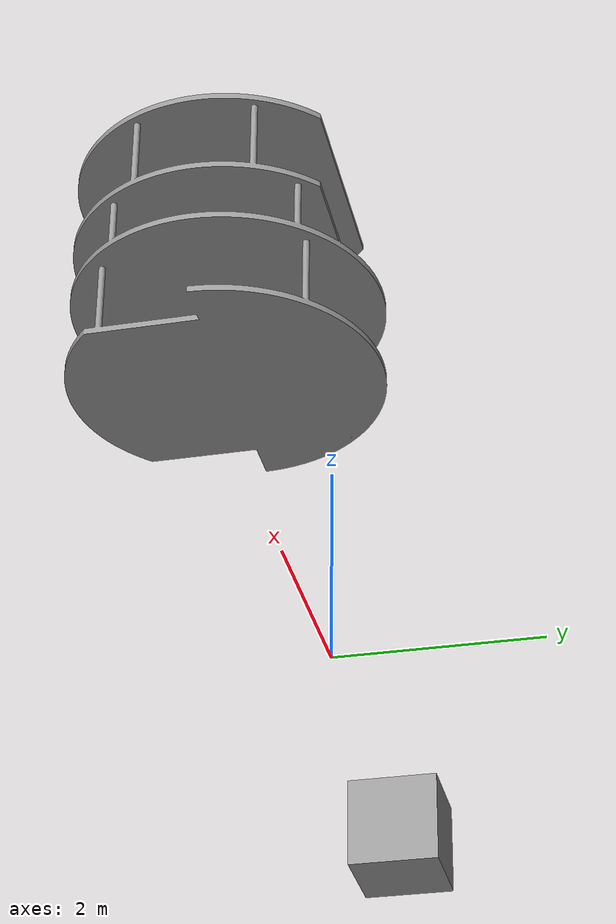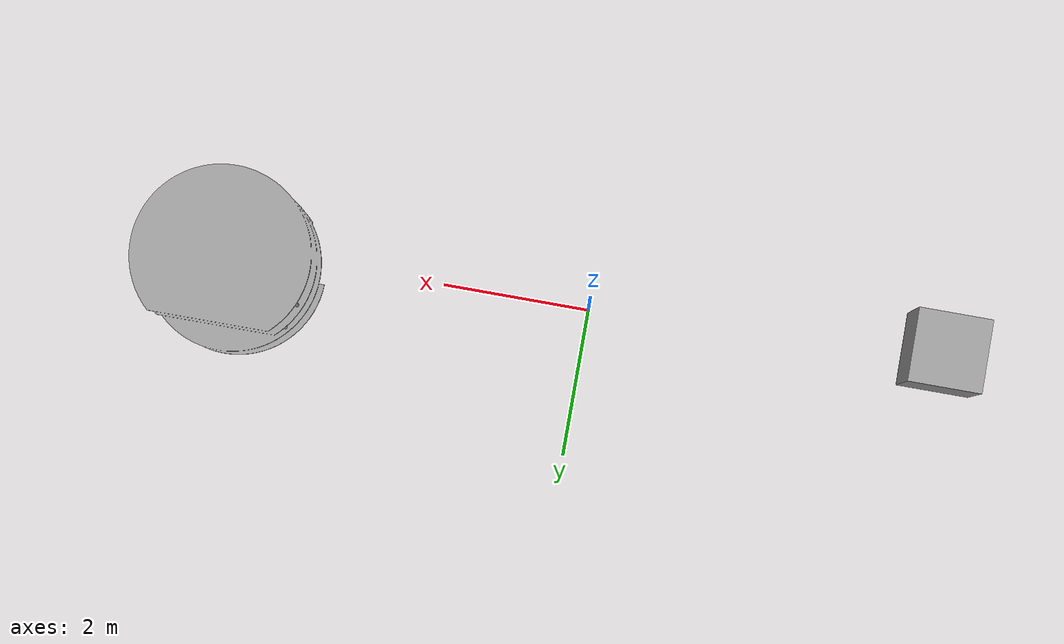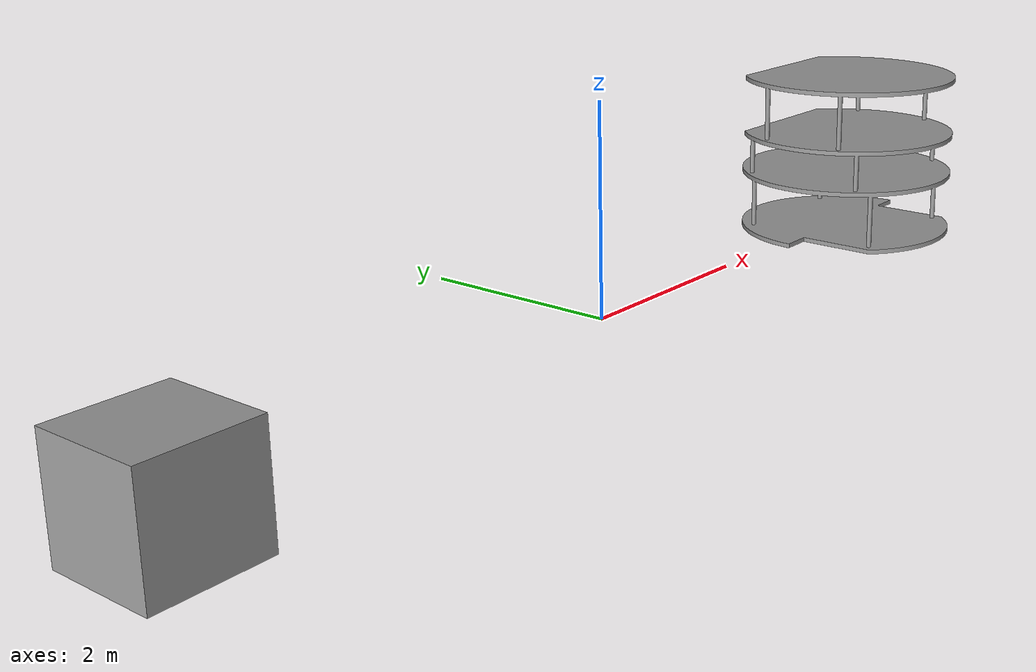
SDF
<?xml version='1.0'?>
<sdf version='1.4'>
  <model name='pirobot'>
    <link name='link_0'>
      <pose frame=''>4.82027 0.249355 -0.25 0 -0 0</pose>
      <gravity>1</gravity>
      <self_collide>0</self_collide>
      <kinematic>0</kinematic>
      <inertial>
        <mass>1</mass>
        <pose frame=''>0 0 0 0 -0 0</pose>
        <inertia>
          <ixx>1</ixx>
          <ixy>0</ixy>
          <ixz>0</ixz>
          <iyy>1</iyy>
          <iyz>0</iyz>
          <izz>1</izz>
        </inertia>
      </inertial>
      <visual name='visual'>
        <pose frame=''>0 0 0 0 -0 0</pose>
        <geometry>
          <mesh>
            <uri>/home/patrick/Dropbox/Robotics/ros/rbx2-git/rbx2_description/meshes/pi_robot/pi_robot_base.stl</uri>
            <scale>0.2 0.2 0.2</scale>
          </mesh>
        </geometry>
        <material>
          <lighting>1</lighting>
          <script>
            <uri>file://media/materials/scripts/gazebo.material</uri>
            <name>Gazebo/Grey</name>
          </script>
          <ambient>0.3 0.3 0.3 1</ambient>
          <diffuse>0.7 0.7 0.7 1</diffuse>
          <specular>0.01 0.01 0.01 1</specular>
          <emissive>0 0 0 1</emissive>
          <shader type='vertex'>
            <normal_map>__default__</normal_map>
          </shader>
        </material>
        <cast_shadows>1</cast_shadows>
        <transparency>0</transparency>
      </visual>
      <collision name='collision'>
        <laser_retro>0</laser_retro>
        <max_contacts>10</max_contacts>
        <pose frame=''>0 0 0 0 -0 0</pose>
        <geometry>
          <mesh>
            <uri>/home/patrick/Dropbox/Robotics/ros/rbx2-git/rbx2_description/meshes/pi_robot/pi_robot_base.stl</uri>
            <scale>0.2 0.2 0.2</scale>
          </mesh>
        </geometry>
        <surface>
          <friction>
            <ode>
              <mu>1</mu>
              <mu2>1</mu2>
              <fdir1>0 0 0</fdir1>
              <slip1>0</slip1>
              <slip2>0</slip2>
            </ode>
          </friction>
          <bounce>
            <restitution_coefficient>0</restitution_coefficient>
            <threshold>1e+06</threshold>
          </bounce>
          <contact>
            <collide_without_contact>0</collide_without_contact>
            <collide_without_contact_bitmask>1</collide_without_contact_bitmask>
            <collide_bitmask>1</collide_bitmask>
            <ode>
              <soft_cfm>0</soft_cfm>
              <soft_erp>0.2</soft_erp>
              <kp>1e+13</kp>
              <kd>1</kd>
              <max_vel>0.01</max_vel>
              <min_depth>0</min_depth>
            </ode>
            <bullet>
              <split_impulse>1</split_impulse>
              <split_impulse_penetration_threshold>-0.01</split_impulse_penetration_threshold>
              <soft_cfm>0</soft_cfm>
              <soft_erp>0.2</soft_erp>
              <kp>1e+13</kp>
              <kd>1</kd>
            </bullet>
          </contact>
        </surface>
      </collision>
    </link>
    <link name='link_1'>
      <pose frame=''>-4.82027 -0.249355 0.25 0 -0 0</pose>
      <visual name='visual'>
        <pose frame=''>0 0 0 0 -0 0</pose>
        <geometry>
          <box>
            <size>1 1 1</size>
          </box>
        </geometry>
        <material>
          <lighting>1</lighting>
          <script>
            <uri>file://media/materials/scripts/gazebo.material</uri>
            <name>Gazebo/Grey</name>
          </script>
          <ambient>0.3 0.3 0.3 1</ambient>
          <diffuse>0.7 0.7 0.7 1</diffuse>
          <specular>0.01 0.01 0.01 1</specular>
          <emissive>0 0 0 1</emissive>
          <shader type='pixel'/>
        </material>
        <cast_shadows>1</cast_shadows>
        <transparency>0</transparency>
      </visual>
      <collision name='collision'>
        <laser_retro>0</laser_retro>
        <max_contacts>10</max_contacts>
        <pose frame=''>0 0 0 0 -0 0</pose>
        <geometry>
          <box>
            <size>1 1 1</size>
          </box>
        </geometry>
        <surface>
          <friction>
            <ode>
              <mu>1</mu>
              <mu2>1</mu2>
              <fdir1>0 0 0</fdir1>
              <slip1>0</slip1>
              <slip2>0</slip2>
            </ode>
          </friction>
          <bounce>
            <restitution_coefficient>0</restitution_coefficient>
            <threshold>1e+06</threshold>
          </bounce>
          <contact>
            <collide_without_contact>0</collide_without_contact>
            <collide_without_contact_bitmask>1</collide_without_contact_bitmask>
            <collide_bitmask>1</collide_bitmask>
            <ode>
              <soft_cfm>0</soft_cfm>
              <soft_erp>0.2</soft_erp>
              <kp>1e+13</kp>
              <kd>1</kd>
              <max_vel>0.01</max_vel>
              <min_depth>0</min_depth>
            </ode>
            <bullet>
              <split_impulse>1</split_impulse>
              <split_impulse_penetration_threshold>-0.01</split_impulse_penetration_threshold>
              <soft_cfm>0</soft_cfm>
              <soft_erp>0.2</soft_erp>
              <kp>1e+13</kp>
              <kd>1</kd>
            </bullet>
          </contact>
        </surface>
      </collision>
    </link>
    <static>0</static>
    <allow_auto_disable>1</allow_auto_disable>
  </model>
</sdf>
